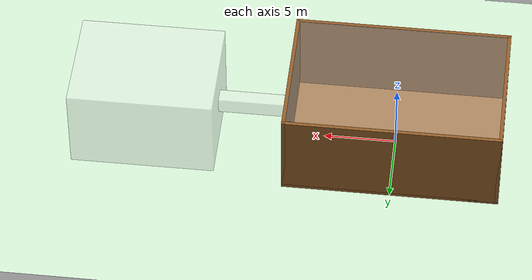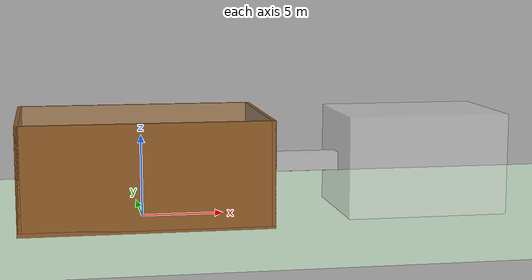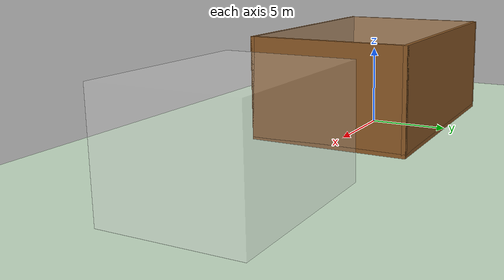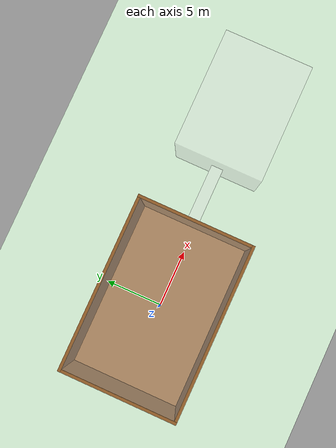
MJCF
<mujoco model="fly_env">
  <compiler angle="radian" meshdir="meshes/"/>
  <option gravity="0 0 -981"/>
  <asset>
    <material name="mat_wood" rgba="0.55 0.35 0.15 1"/>
    <material name="mat_glass" rgba="0.9 0.9 0.9 0.3"/>
    <material name="mat_opaque" rgba="0.5 0.5 0.5 1"/>

        <mesh name="flight_box_base" file="flight_box_base.STL" scale="25 25 25"/>
    <mesh name="channel_link" file="channel_link.STL" scale="25 25 25"/>
    <mesh name="feeding_box_link" file="feeding_box_link.STL" scale="25 25 25"/>
  </asset>

  <worldbody>
        <light pos="0 0 75" dir="0 0 -1" directional="true"/>
        <geom name="floor" type="plane" size="125 125 2.5" rgba=".8 .9 .8 1"/>

    <body name="part1_big_box" pos="0 0 0" euler="0 0 0">
            <geom name="big_floor" type="box" size="7.5 5 0.125" pos="0 0 0.1" material="mat_wood"/>

            <geom name="big_wall_f" type="box" size="7.5 0.125 3.125" pos="0 4.875 3.25" material="mat_wood"/>
      <geom name="big_wall_b" type="box" size="7.5 0.125 3.125" pos="0 -4.875 3.25" material="mat_wood"/>
      <geom name="big_wall_l" type="box" size="0.125 5 3.125" pos="-7.375 0 3.25" material="mat_wood"/>
      <geom name="big_wall_r" type="box" size="0.125 5 3.125" pos="7.375 0 3.25" material="mat_wood"/>

            <geom name="big_glass_top" type="box" size="7.25 4.75 0.025" pos="0 0 6.375" material="mat_glass"/>
    </body>

        <body name="part2_channel" pos="1.25 0 0" euler="0 0 0">
      <geom type="mesh" mesh="channel_link" material="mat_glass"/>
    </body>

        <body name="part3_small_box" pos="17 -0.4 0" euler="1.57 -3.14 0">
      <geom type="mesh" mesh="feeding_box_link" material="mat_glass"/>
    </body>
  </worldbody>
</mujoco>
